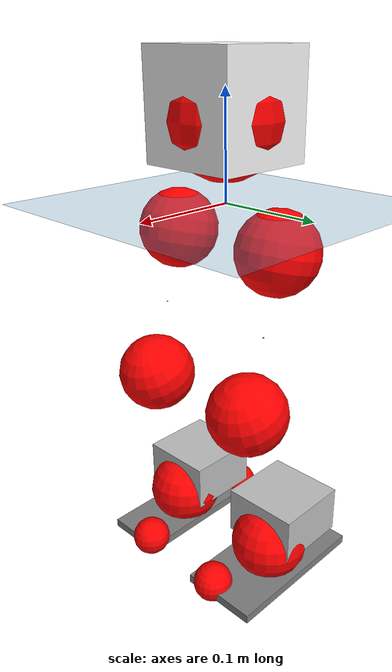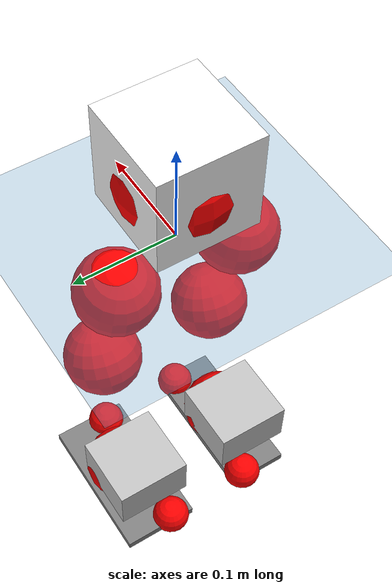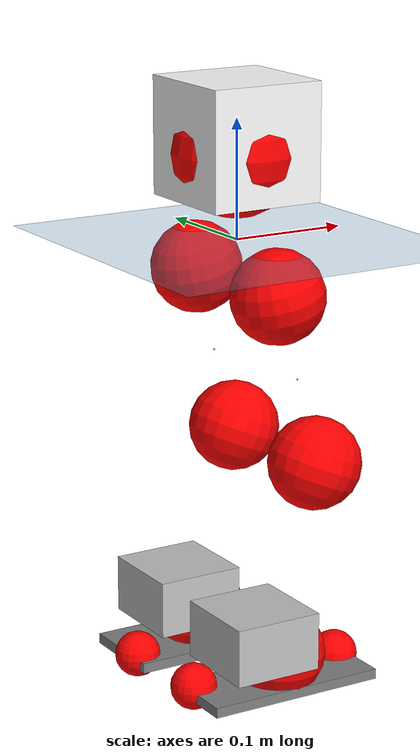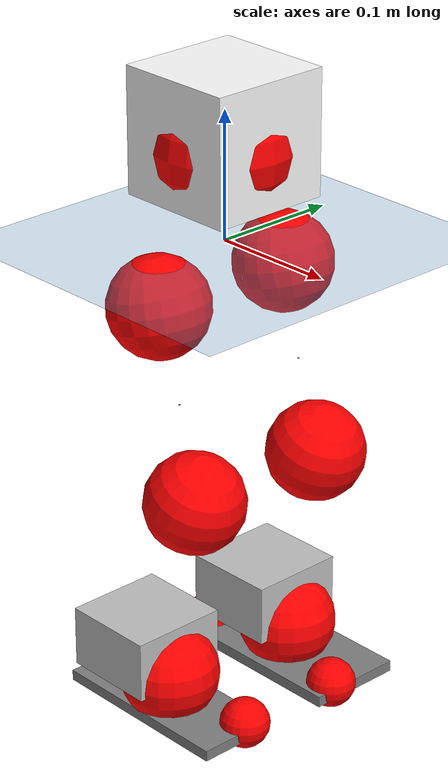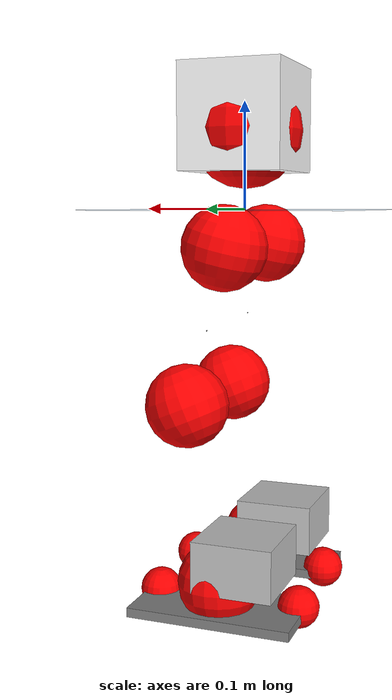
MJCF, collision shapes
<mujoco model="pi_12dof_release_v1">
  <compiler angle="radian" assetdir="assets" balanceinertia="true" inertiafromgeom="false"/>

  <option timestep="0.005" density="1.2" viscosity="2e-05"/>

  <size nkey="1"/>

  <visual>
    <quality shadowsize="8192"/>
    <map shadowclip="0.5"/>
  </visual>

  <default>
    <default class="/">
      <joint armature="0.01" damping="0.01" frictionloss="0.01"/>
      <geom contype="0" conaffinity="0" group="1" solref="-1000 -80"/>
      <site size="0.01 0.005 0.005" group="5"/>
      <general forcelimited="true" biastype="affine" gainprm="20" biasprm="0 -20 -0.5"/>
      <default class="foot">
        <geom size="0.0845 0.036 0.005" type="box" condim="6" group="4" priority="1" friction="0.9 0.2 0.2" solimp="0.015 1 0.005"/>
      </default>
      <default class="reward_collision_sphere">
        <geom group="5" rgba="1 0 0 1"/>
      </default>
    </default>
  </default>

  <asset>
    <texture type="skybox" colorspace="auto" name="//unnamed_texture_0" builtin="gradient" rgb1="0.95 0.95 0.95" rgb2="0.95 0.95 0.95" width="100" height="600"/>
    <texture type="2d" colorspace="auto" name="texplane" builtin="checker" rgb1="0.345 0.575 0.748" rgb2="0.345 0.575 0.748" markrgb="1 1 1" width="512" height="512"/>
    <material name="MatPlane" class="/" texture="texplane" texuniform="true" texrepeat="2 2" specular="0.9"/>
    <mesh name="baselink_1" class="/" file="baselink_1.STL"/>
    <mesh name="r_hip_pitch_link" class="/" file="r_hip_pitch_link.STL"/>
    <mesh name="r_hip_roll_link" class="/" file="r_hip_roll_link.STL"/>
    <mesh name="r_thigh_link" class="/" file="r_thigh_link.STL"/>
    <mesh name="r_calf_link" class="/" file="r_calf_link.STL"/>
    <mesh name="r_ankle_pitch_link" class="/" file="r_ankle_pitch_link.STL"/>
    <mesh name="r_ankle_roll_link" class="/" file="r_ankle_roll_link.STL"/>
    <mesh name="l_hip_pitch_link" class="/" file="l_hip_pitch_link.STL"/>
    <mesh name="l_hip_roll_link" class="/" file="l_hip_roll_link.STL"/>
    <mesh name="l_thigh_link" class="/" file="l_thigh_link.STL"/>
    <mesh name="l_calf_link" class="/" file="l_calf_link.STL"/>
    <mesh name="l_ankle_pitch_link" class="/" file="l_ankle_pitch_link.STL"/>
    <mesh name="l_ankle_roll_link" class="/" file="l_ankle_roll_link.STL"/>
  </asset>

  <worldbody>
    <geom name="floor" class="/" size="100 100 0.125" type="plane" group="0" material="MatPlane"/>
    <light name="toplight_shadow" class="/" pos="0 0 5" dir="0.0990148 0.0990148 -0.990148" type="directional" ambient="0.04 0.04 0.04" diffuse="0.55 0.55 0.55" specular="0.12 0.12 0.12"/>
    <light name="toplight_fill" class="/" pos="0 0 5" dir="0.0990148 0.0990148 -0.990148" type="directional" castshadow="false" ambient="0.04 0.04 0.04" diffuse="0.3 0.3 0.3" specular="0.08 0.08 0.08"/>
    <body name="trunk" pos="-0.000528228 -0.00029306 -0.00268144" quat="0.999999 0.000787719 2.33917e-05 -0.00109798">
      <inertial pos="0.000666673 0.00140772 0.0441328" quat="0.688403 0.00315667 0.0162535 0.72514" mass="2.05655" diaginertia="0.0120126 0.00373169 0.00636498"/>
      <joint name="//unnamed_joint_0" type="free"/>
      <geom name="//unnamed_geom_1" class="/" type="mesh" density="0" rgba="1 1 1 1" mesh="baselink_1"/>
      <geom name="//unnamed_geom_2" class="/" size="0.04909 0.04909 0.04909" pos="0 0 0.0864234" type="box" rgba="1 1 1 1"/>
      <geom name="//unnamed_geom_3" class="reward_collision_sphere" size="0.053999" pos="0 0 0.0756205"/>
      <site name="imu" class="/" pos="-0.00509554 0.00591437 -0.0114634" size="0.009818"/>
      <camera name="track" class="/" pos="0 -1.66165 0" quat="0.707107 0.707107 0 0" mode="trackcom"/>
      <camera name="ego_camera" class="/" pos="0.0775712 0 0.194453" quat="-0.5 -0.5 0.5 0.5"/>
      <body name="r_hip_pitch_link" pos="0.00208167 -0.0188724 -0.0336968" quat="0.992198 1.06894e-05 -0.124671 1.50796e-05">
        <inertial pos="-0.00155259 -0.0472565 -0.00258678" quat="-0.0175312 0.713857 -0.0206461 0.699768" mass="0.344415" diaginertia="0.000130023 3.87207e-05 0.000120667"/>
        <joint name="r_hip_pitch_joint" class="/" pos="0 0 0" axis="0.00486983 -0.999988 -0.000895274" stiffness="0.00176112" range="-1.77326 1.26996" armature="0.0098692" damping="0.0150221" frictionloss="0.00939094"/>
        <geom name="//unnamed_geom_4" class="/" type="mesh" density="0" rgba="0.75294 0.75294 0.75294 1" mesh="r_hip_pitch_link"/>
        <geom name="//unnamed_geom_5" class="/" size="0.0004909 0.0004909 0.0004909" type="box" rgba="0.75294 0.75294 0.75294 1"/>
        <body name="r_hip_roll_link" pos="-0.00156453 -0.0449435 0.00262805" quat="1 0.000171443 0.000304478 -0.000159992">
          <inertial pos="-0.00153747 0.000184175 -0.0643677" quat="0.706264 -0.0778585 -0.0860132 0.698378" mass="0.350997" diaginertia="0.000377672 0.000106406 0.000177352"/>
          <joint name="r_hip_roll_joint" class="/" pos="0 0 0" axis="-0.999952 0.00307911 -0.00926015" stiffness="0.00157009" range="-0.120253 0.505608" armature="0.0085469" damping="0.0087678" frictionloss="0.0104769"/>
          <geom name="//unnamed_geom_6" class="/" type="mesh" density="0" rgba="0.75294 0.75294 0.75294 1" mesh="r_hip_roll_link"/>
          <geom name="//unnamed_geom_7" class="/" size="0.0004909 0.0004909 0.0004909" type="box" rgba="0.75294 0.75294 0.75294 1"/>
          <geom name="//unnamed_geom_8" class="reward_collision_sphere" size="0.039272"/>
          <body name="r_thigh_link" pos="0.00153186 0.00102259 -0.0745621" quat="1 0.000434628 -0.000344945 2.56679e-05">
            <inertial pos="-0.00221432 -0.00192803 -0.0520631" quat="0.736818 0.676087 0.000938381 -0.00225962" mass="0.105797" diaginertia="0.000141928 3.71374e-05 8.48967e-05"/>
            <joint name="r_thigh_joint" class="/" pos="0 0 0" axis="-0.000197603 0.00343828 -0.999994" range="-0.31379 0.642585" armature="0.0086445" damping="0.0143993" frictionloss="0.0102668"/>
            <geom name="//unnamed_geom_9" class="/" type="mesh" density="0" rgba="0.75294 0.75294 0.75294 1" mesh="r_thigh_link"/>
            <geom name="//unnamed_geom_10" class="/" size="0.0004909 0.0004909 0.0004909" type="box" rgba="0.75294 0.75294 0.75294 1"/>
            <body name="r_calf_link" pos="-0.00179385 -0.00106334 -0.0757703" quat="0.947314 -0.000537612 0.320305 -0.000630676">
              <inertial pos="-0.000499073 -0.000784241 -0.0760296" quat="0.999952 -0.00477563 0.00162153 -0.0083995" mass="0.803592" diaginertia="0.00415846 0.0013916 0.000257153"/>
              <joint name="r_calf_joint" class="/" pos="0 0 0" axis="0.00379026 -0.999989 -0.00265646" stiffness="0.00194632" range="-1.64682 0.664698" armature="0.00984406" damping="0.0109257" frictionloss="0.00981242"/>
              <geom name="//unnamed_geom_11" class="/" type="mesh" density="0" rgba="0.75294 0.75294 0.75294 1" mesh="r_calf_link"/>
              <geom name="//unnamed_geom_12" class="/" size="0.0004909 0.0004909 0.0004909" type="box" rgba="0.75294 0.75294 0.75294 1"/>
              <geom name="//unnamed_geom_13" class="reward_collision_sphere" size="0.039272"/>
              <body name="r_ankle_pitch_link" pos="0.00143212 0.000428464 -0.151596" quat="0.980073 0.000126624 -0.198636 0.000210582">
                <inertial pos="0.00453862 0.00280392 0.000406298" quat="-7.84595e-05 0.709255 -0.00490394 0.704935" mass="0.170679" diaginertia="0.000365656 8.49217e-05 0.000176058"/>
                <joint name="r_ankle_pitch_joint" class="/" pos="0 0 0" axis="-0.0043594 -0.999983 -0.00398495" range="-1.31646 0.503004" armature="0.00995889" damping="0.0230548" frictionloss="0.00940659"/>
                <geom name="//unnamed_geom_14" class="/" type="mesh" density="0" rgba="0.75294 0.75294 0.75294 1" mesh="r_ankle_pitch_link"/>
                <geom name="//unnamed_geom_15" class="/" size="0.0382902 0.039272 0.024545" type="box" rgba="0.75294 0.75294 0.75294 1"/>
                <body name="r_ankle_roll_link" pos="0.0768517 0.00133171 0.000976377" quat="1 0.000326268 0.000426993 0.000293564">
                  <inertial pos="-0.0234727 -0.00254566 -0.013485" quat="0.564206 0.439176 0.427445 0.553251" mass="0.479378" diaginertia="0.00128862 0.000407429 0.000395146"/>
                  <joint name="r_ankle_roll_joint" class="/" pos="0 0 0" axis="-0.999995 -0.000270156 -0.00306062" range="-0.201846 0.176492" armature="0.00853295" damping="0.00249708" frictionloss="0.00848968"/>
                  <geom name="//unnamed_geom_16" class="/" type="mesh" density="0" rgba="0.75294 0.75294 0.75294 1" mesh="r_ankle_roll_link"/>
                  <geom name="//unnamed_geom_17" class="/" type="mesh" rgba="0.75294 0.75294 0.75294 1" mesh="r_ankle_roll_link"/>
                  <geom name="right_foot" class="foot" size="0.0782157 0.0320354 0.00433713" pos="-0.0527484 0 -0.0475329"/>
                  <geom name="//unnamed_geom_19" class="reward_collision_sphere" size="0.039272" pos="-0.0517141 0 -0.0216058"/>
                  <geom name="//unnamed_geom_20" class="reward_collision_sphere" size="0.019636" pos="0.0155142 0.0166165 -0.0432117"/>
                  <geom name="//unnamed_geom_21" class="reward_collision_sphere" size="0.019636" pos="-0.124114 0.0166165 -0.0432117"/>
                  <site name="right_foot" class="foot" pos="-0.0527484 0 -0.0475329" size="0.009818"/>
                </body>
              </body>
            </body>
          </body>
        </body>
      </body>
      <body name="l_hip_pitch_link" pos="3.69604e-05 0.0176507 -0.0335795" quat="0.992176 -0.000263725 -0.124848 0.000124121">
        <inertial pos="0.00102619 0.0419726 -0.00256059" quat="-0.0397381 0.705564 0.0295184 0.706915" mass="0.364863" diaginertia="0.000148837 4.09234e-05 0.000141951"/>
        <joint name="l_hip_pitch_joint" class="/" pos="0 0 0" axis="-0.00382436 0.999902 0.0134773" range="-1.30065 1.73916" armature="0.00984291" damping="0" frictionloss="0.0102111"/>
        <geom name="//unnamed_geom_22" class="/" type="mesh" density="0" rgba="0.75294 0.75294 0.75294 1" mesh="l_hip_pitch_link"/>
        <geom name="//unnamed_geom_23" class="/" size="0.0004909 0.0004909 0.0004909" type="box" rgba="0.75294 0.75294 0.75294 1"/>
        <body name="l_hip_roll_link" pos="-0.00111834 0.0438078 0.00221839" quat="0.999999 0.000919539 -0.000313116 0.000278041">
          <inertial pos="0.000966823 -0.00220908 -0.0686059" quat="0.69925 -0.0753035 -0.0776729 0.706644" mass="0.376895" diaginertia="0.000420522 0.000112324 0.000199492"/>
          <joint name="l_hip_roll_joint" class="/" pos="0 0 0" axis="-0.99999 -0.0016821 -0.00404299" range="-0.501581 0.0918291" armature="0.00889495" damping="0.0128767" frictionloss="0.00984198"/>
          <geom name="//unnamed_geom_24" class="/" type="mesh" density="0" rgba="0.75294 0.75294 0.75294 1" mesh="l_hip_roll_link"/>
          <geom name="//unnamed_geom_25" class="/" size="0.0004909 0.0004909 0.0004909" type="box" rgba="0.75294 0.75294 0.75294 1"/>
          <geom name="//unnamed_geom_26" class="reward_collision_sphere" size="0.039272"/>
          <body name="l_thigh_link" pos="-0.00199292 8.15632e-05 -0.0769427" quat="0.999999 -0.000148156 -0.000362792 0.00105835">
            <inertial pos="-0.00219262 -0.00016476 -0.0541384" quat="0.668423 0.74372 -0.00893556 0.00339421" mass="0.104669" diaginertia="0.000144376 3.62348e-05 8.31598e-05"/>
            <joint name="l_thigh_joint" class="/" pos="0 0 0" axis="-0.000586701 -0.00207257 -0.999998" range="-0.613026 0.317622" armature="0.0102025" damping="0.0063222" frictionloss="0.0111172"/>
            <geom name="//unnamed_geom_27" class="/" type="mesh" density="0" rgba="0.75294 0.75294 0.75294 1" mesh="l_thigh_link"/>
            <geom name="//unnamed_geom_28" class="/" size="0.0004909 0.0004909 0.0004909" type="box" rgba="0.75294 0.75294 0.75294 1"/>
            <body name="l_calf_link" pos="0.00167362 -2.81245e-05 -0.0737561" quat="0.947563 5.92982e-05 0.31957 -0.000135883">
              <inertial pos="-0.00195571 0.00102502 -0.0767784" quat="0.999922 -0.00985108 -0.00279245 0.00711278" mass="0.770866" diaginertia="0.00445297 0.00143979 0.000268131"/>
              <joint name="l_calf_joint" class="/" pos="0 0 0" axis="0.00505592 0.999978 0.00437051" range="-0.701925 1.70658" armature="0.00936448" damping="0" frictionloss="0.010599"/>
              <geom name="//unnamed_geom_29" class="/" type="mesh" density="0" rgba="0.75294 0.75294 0.75294 1" mesh="l_calf_link"/>
              <geom name="//unnamed_geom_30" class="/" size="0.0004909 0.0004909 0.0004909" type="box" rgba="0.75294 0.75294 0.75294 1"/>
              <geom name="//unnamed_geom_31" class="reward_collision_sphere" size="0.039272"/>
              <body name="l_ankle_pitch_link" pos="0.0022672 0.000256195 -0.151539" quat="0.980107 -0.000233498 -0.198468 -0.000300415">
                <inertial pos="0.00549419 -0.0020557 -0.00277981" quat="-0.00269355 0.704275 -0.0051736 0.709903" mass="0.162627" diaginertia="0.000379566 8.86583e-05 0.00017564"/>
                <joint name="l_ankle_pitch_joint" class="/" pos="0 0 0" axis="0.00018723 0.999997 -0.00232722" stiffness="0.00853277" range="-0.54135 1.30694" armature="0.00974813" damping="0" frictionloss="0.00867233"/>
                <geom name="//unnamed_geom_32" class="/" type="mesh" density="0" rgba="0.75294 0.75294 0.75294 1" mesh="l_ankle_pitch_link"/>
                <geom name="//unnamed_geom_33" class="/" size="0.0382902 0.039272 0.024545" type="box" rgba="0.75294 0.75294 0.75294 1"/>
                <body name="l_ankle_roll_link" pos="0.0754912 0.00278529 -0.00267098" quat="0.999999 -1.1503e-05 0.00116193 -0.000532818">
                  <inertial pos="-0.0255615 -0.000622178 -0.0162592" quat="0.554264 0.429717 0.445968 0.5561" mass="0.505506" diaginertia="0.00137663 0.000419209 0.000409422"/>
                  <joint name="l_ankle_roll_joint" class="/" pos="0 0 0" axis="-1 5.90828e-05 -2.28285e-05" stiffness="0.00399354" range="-0.165016 0.101386" armature="0.00983147" damping="0" frictionloss="0.00956139"/>
                  <geom name="//unnamed_geom_34" class="/" type="mesh" density="0" rgba="0.75294 0.75294 0.75294 1" mesh="l_ankle_roll_link"/>
                  <geom name="//unnamed_geom_35" class="/" type="mesh" rgba="0.75294 0.75294 0.75294 1" mesh="l_ankle_roll_link"/>
                  <geom name="left_foot" class="foot" size="0.0785996 0.0396181 0.00445472" pos="-0.0527484 0 -0.0475329"/>
                  <geom name="//unnamed_geom_37" class="reward_collision_sphere" size="0.039272" pos="-0.0517141 0 -0.0216058"/>
                  <geom name="//unnamed_geom_38" class="reward_collision_sphere" size="0.019636" pos="0.0155142 -0.0166165 -0.0432117"/>
                  <geom name="//unnamed_geom_39" class="reward_collision_sphere" size="0.019636" pos="-0.124114 -0.0166165 -0.0432117"/>
                  <site name="left_foot" class="foot" pos="-0.0527484 0 -0.0475329" size="0.009818"/>
                </body>
              </body>
            </body>
          </body>
        </body>
      </body>
    </body>
  </worldbody>

  <contact>
    <pair class="/" geom1="floor" geom2="right_foot" name="//unnamed_contact_1"/>
    <pair class="/" geom1="floor" geom2="left_foot" name="//unnamed_contact_0"/>
  </contact>

  <actuator>
    <general name="r_hip_pitch_joint" class="/" joint="r_hip_pitch_joint" forcerange="-22.6586 22.6586" gainprm="18.4473" biasprm="0 -18.4473 -0.460484"/>
    <general name="r_hip_roll_joint" class="/" joint="r_hip_roll_joint" forcerange="-18.6123 18.6123" gainprm="18.4473" biasprm="0 -18.4473 -0.460484"/>
    <general name="r_thigh_joint" class="/" joint="r_thigh_joint" forcerange="-20.8717 20.8717" gainprm="18.4473" biasprm="0 -18.4473 -0.460484"/>
    <general name="r_calf_joint" class="/" joint="r_calf_joint" forcerange="-22.5663 22.5663" gainprm="18.4473" biasprm="0 -18.4473 -0.460484"/>
    <general name="r_ankle_pitch_joint" class="/" joint="r_ankle_pitch_joint" forcerange="-20.4769 20.4769" gainprm="18.4473" biasprm="0 -18.4473 -0.460484"/>
    <general name="r_ankle_roll_joint" class="/" joint="r_ankle_roll_joint" forcerange="-18.5646 18.5646" gainprm="18.4473" biasprm="0 -18.4473 -0.460484"/>
    <general name="l_hip_pitch_joint" class="/" joint="l_hip_pitch_joint" forcerange="-20.6523 20.6523" gainprm="18.4473" biasprm="0 -18.4473 -0.460484"/>
    <general name="l_hip_roll_joint" class="/" joint="l_hip_roll_joint" forcerange="-19.8826 19.8826" gainprm="18.4473" biasprm="0 -18.4473 -0.460484"/>
    <general name="l_thigh_joint" class="/" joint="l_thigh_joint" forcerange="-21.4364 21.4364" gainprm="18.4473" biasprm="0 -18.4473 -0.460484"/>
    <general name="l_calf_joint" class="/" joint="l_calf_joint" forcerange="-21.2642 21.2642" gainprm="18.4473" biasprm="0 -18.4473 -0.460484"/>
    <general name="l_ankle_pitch_joint" class="/" joint="l_ankle_pitch_joint" forcerange="-21.2691 21.2691" gainprm="18.4473" biasprm="0 -18.4473 -0.460484"/>
    <general name="l_ankle_roll_joint" class="/" joint="l_ankle_roll_joint" forcerange="-20.6027 20.6027" gainprm="18.4473" biasprm="0 -18.4473 -0.460484"/>
  </actuator>

  <sensor>
    <gyro site="imu" name="imu_angular_velocity"/>
    <velocimeter site="imu" name="imu_linear_velocity"/>
    <framelinvel objtype="site" objname="left_foot" name="left_foot_global_linear_velocity"/>
    <framelinvel objtype="site" objname="right_foot" name="right_foot_global_linear_velocity"/>
  </sensor>

  <keyframe>
    <key name="home" qpos="0 0 0.291 1 0 0 0 0.4 0 0 -0.8 0.4 0 -0.4 0 0 0.8 -0.4 0"/>
  </keyframe>
</mujoco>
